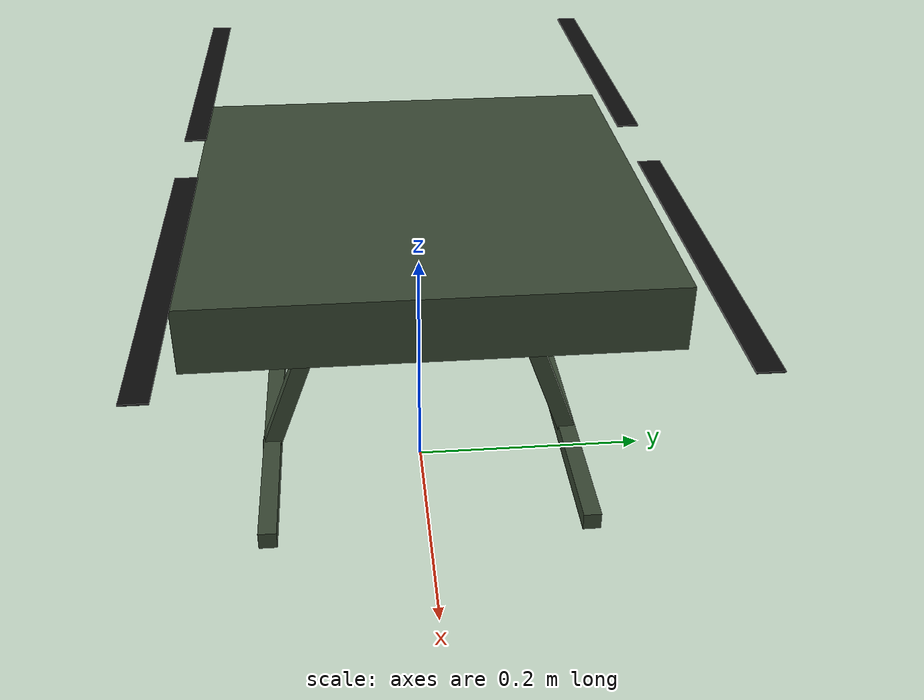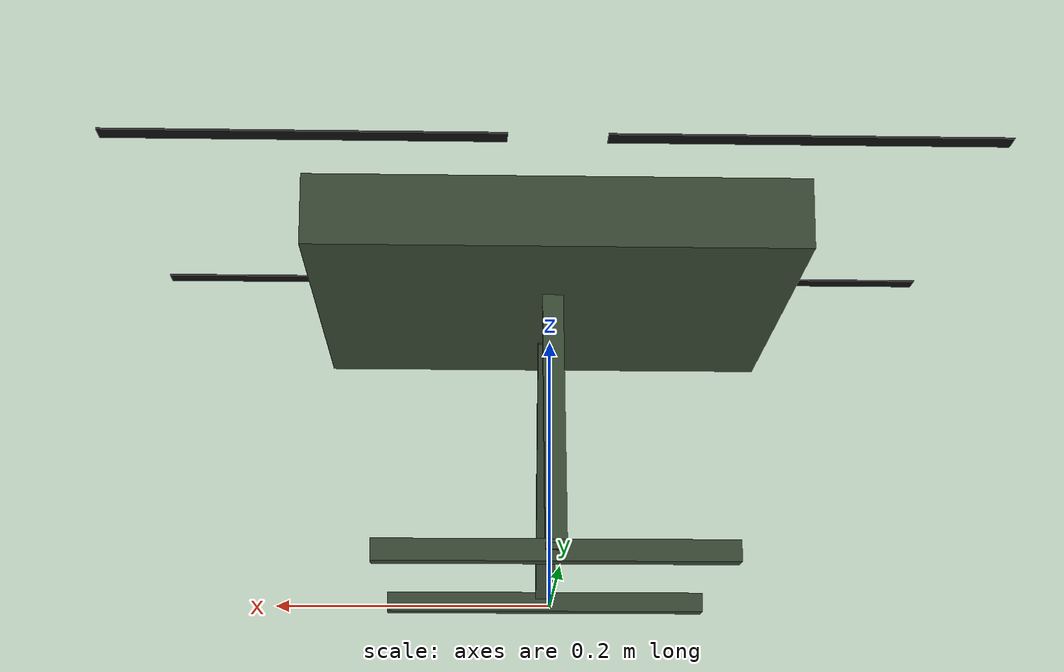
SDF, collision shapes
<?xml version="1.0" encoding="UTF-8"?>
<sdf version='1.9'>
  <model name='x500_base'>
    <pose>0 0 .24 0 0 0</pose>
    <self_collide>false</self_collide>
    <static>false</static>

    <link name="base_link">
      <inertial>
        <mass>2.0</mass>
        <inertia>
          <ixx>0.02166666666666667</ixx>
          <ixy>0</ixy>
          <ixz>0</ixz>
          <iyy>0.02166666666666667</iyy>
          <iyz>0</iyz>
          <izz>0.04000000000000001</izz>
        </inertia>
      </inertial>
      <gravity>true</gravity>
      <velocity_decay />

      <visual name="base_link_visual">
        <pose>0 0 .025 0 0 3.141592654</pose>
        <geometry>
          <mesh>
            <scale>1 1 1</scale>
            <uri>model://x500_base/meshes/NXP-HGD-CF.dae</uri>
          </mesh>
        </geometry>
        <material>
          <ambient>0.22 0.28 0.20 1</ambient>
          <diffuse>0.22 0.28 0.20 1</diffuse>
          <specular>0.05 0.05 0.05 1</specular>
          <pbr>
            <metal>
              <roughness>0.9</roughness>
              <metalness>0.1</metalness>
            </metal>
          </pbr>
        </material>
      </visual>

      <visual name="napoli_logo">
        <pose>0 0 0.06 0 0 0</pose>
        <cast_shadows>false</cast_shadows>
        <geometry>
          <plane>
            <normal>0 0 1</normal>
            <size>0.12 0.12</size>
          </plane>
        </geometry>
        <material>
          <ambient>1 1 1 1</ambient>
          <diffuse>1 1 1 1</diffuse>
          <specular>0.2 0.2 0.2 1</specular>
          <pbr>
            <metal>
              <albedo_map>model://x500_base/materials/textures/napoli.png</albedo_map>
              <roughness>0.5</roughness>
              <metalness>0.0</metalness>
            </metal>
          </pbr>
        </material>
      </visual>

      <visual name="5010_motor_base_0">
        <pose>0.174 0.174 .032 0 0 -.45</pose>
        <geometry><mesh><scale>1 1 1</scale><uri>model://x500_base/meshes/5010Base.dae</uri></mesh></geometry>
        <material><ambient>0.1 0.1 0.1 1</ambient><diffuse>0.1 0.1 0.1 1</diffuse></material>
      </visual>
      <visual name="5010_motor_base_1">
        <pose>-0.174 0.174 .032 0 0 -.45</pose>
        <geometry><mesh><scale>1 1 1</scale><uri>model://x500_base/meshes/5010Base.dae</uri></mesh></geometry>
        <material><ambient>0.1 0.1 0.1 1</ambient><diffuse>0.1 0.1 0.1 1</diffuse></material>
      </visual>
      <visual name="5010_motor_base_2">
        <pose>0.174 -0.174 .032 0 0 -.45</pose>
        <geometry><mesh><scale>1 1 1</scale><uri>model://x500_base/meshes/5010Base.dae</uri></mesh></geometry>
        <material><ambient>0.1 0.1 0.1 1</ambient><diffuse>0.1 0.1 0.1 1</diffuse></material>
      </visual>
      <visual name="5010_motor_base_3">
        <pose>-0.174 -0.174 .032 0 0 -.45</pose>
        <geometry><mesh><scale>1 1 1</scale><uri>model://x500_base/meshes/5010Base.dae</uri></mesh></geometry>
        <material><ambient>0.1 0.1 0.1 1</ambient><diffuse>0.1 0.1 0.1 1</diffuse></material>
      </visual>

      <visual name="NXP_FMUK66_FRONT">
        <pose>0.047 .001 .043 1 0 1.57</pose>
        <cast_shadows>false</cast_shadows>
        <geometry><plane><normal>0 0 1</normal><size>.013 .007</size></plane></geometry>
        <material><ambient>0.05 0.05 0.05 1</ambient><diffuse>0.05 0.05 0.05 1</diffuse></material>
      </visual>
      <visual name="NXP_FMUK66_TOP">
        <pose>-0.023 0 .0515 0 0 -1.57</pose>
        <cast_shadows>false</cast_shadows>
        <geometry><plane><normal>0 0 1</normal><size>.013 .007</size></plane></geometry>
        <material><ambient>0.05 0.05 0.05 1</ambient><diffuse>0.05 0.05 0.05 1</diffuse></material>
      </visual>
      <visual name="RDDRONE_FMUK66_TOP">
        <pose>-.03 0 .0515 0 0 -1.57</pose>
        <cast_shadows>false</cast_shadows>
        <geometry><plane><normal>0 0 1</normal><size>.032 .0034</size></plane></geometry>
        <material><ambient>0.05 0.05 0.05 1</ambient><diffuse>0.05 0.05 0.05 1</diffuse></material>
      </visual>

      <collision name="base_link_collision_0">
        <pose>0 0 .007 0 0 0</pose>
        <geometry><box><size>0.35 0.35 0.05</size></box></geometry>
      </collision>
      <collision name="base_link_collision_1">
        <pose>0 -0.098 -.123 -0.35 0 0</pose>
        <geometry><box><size>0.015 0.015 0.21</size></box></geometry>
      </collision>
      <collision name="base_link_collision_2">
        <pose>0 0.098 -.123 0.35 0 0</pose>
        <geometry><box><size>0.015 0.015 0.21</size></box></geometry>
      </collision>
      <collision name="base_link_collision_3">
        <pose>0 -0.132 -.2195 0 0 0</pose>
        <geometry><box><size>0.25 0.015 0.015</size></box></geometry>
      </collision>
      <collision name="base_link_collision_4">
        <pose>0 0.132 -.2195 0 0 0</pose>
        <geometry><box><size>0.25 0.015 0.015</size></box></geometry>
      </collision>

      <sensor name="air_pressure_sensor" type="air_pressure">
        <gz_frame_id>base_link</gz_frame_id>
        <always_on>1</always_on>
        <update_rate>50</update_rate>
        <air_pressure>
          <pressure>
            <noise type="gaussian"><mean>0</mean><stddev>3</stddev></noise>
          </pressure>
        </air_pressure>
      </sensor>
      <sensor name="magnetometer_sensor" type="magnetometer">
        <gz_frame_id>base_link</gz_frame_id>
        <always_on>1</always_on>
        <update_rate>100</update_rate>
        <magnetometer>
          <x><noise type="gaussian"><stddev>0.0001</stddev></noise></x>
          <y><noise type="gaussian"><stddev>0.0001</stddev></noise></y>
          <z><noise type="gaussian"><stddev>0.0001</stddev></noise></z>
        </magnetometer>
      </sensor>
      <sensor name="imu_sensor" type="imu">
        <gz_frame_id>base_link</gz_frame_id>
        <always_on>1</always_on>
        <update_rate>250</update_rate>
        <imu>
          <angular_velocity>
            <x><noise type="gaussian"><stddev>0.00087</stddev></noise></x>
            <y><noise type="gaussian"><stddev>0.00087</stddev></noise></y>
            <z><noise type="gaussian"><stddev>0.00087</stddev></noise></z>
          </angular_velocity>
          <linear_acceleration>
            <x><noise type="gaussian"><stddev>0.00637</stddev></noise></x>
            <y><noise type="gaussian"><stddev>0.00637</stddev></noise></y>
            <z><noise type="gaussian"><stddev>0.00686</stddev></noise></z>
          </linear_acceleration>
        </imu>
      </sensor>
      <sensor name="navsat_sensor" type="navsat">
        <gz_frame_id>base_link</gz_frame_id>
        <always_on>1</always_on>
        <update_rate>30</update_rate>
      </sensor>

      <sensor name="downward_camera" type="camera">
        <pose>0 0 -0.05 0 1.5708 0</pose>
        <camera>
          <horizontal_fov>1.047</horizontal_fov>
          <image>
            <width>640</width>
            <height>480</height>
          </image>
          <clip>
            <near>0.1</near>
            <far>100</far>
          </clip>
        </camera>
        <always_on>1</always_on>
        <update_rate>30</update_rate>
        <visualize>true</visualize>
        <topic>/drone/downward_cam/image_raw</topic>
      </sensor>

    </link>

    <link name="rotor_0">
      <gravity>true</gravity>
      <self_collide>false</self_collide>
      <velocity_decay />
      <pose>0.174 -0.174 0.06 0 0 0</pose>
      <inertial>
        <mass>0.016</mass>
        <inertia><ixx>3.8e-07</ixx><iyy>2.6e-05</iyy><izz>2.6e-05</izz></inertia>
      </inertial>
      <visual name="rotor_0_visual">
        <pose>-0.022 -0.146 -0.016 0 0 0</pose>
        <geometry><mesh><scale>0.85 0.85 0.85</scale><uri>model://x500_base/meshes/1345_prop_ccw.stl</uri></mesh></geometry>
        <material><ambient>0.05 0.05 0.05 1</ambient><diffuse>0.05 0.05 0.05 1</diffuse></material>
      </visual>
      <visual name="rotor_0_visual_motor_bell">
        <pose>0 0 -.032 0 0 0</pose>
        <geometry><mesh><scale>1 1 1</scale><uri>model://x500_base/meshes/5010Bell.dae</uri></mesh></geometry>
        <material><ambient>0.1 0.1 0.1 1</ambient><diffuse>0.1 0.1 0.1 1</diffuse></material>
      </visual>
      <collision name="rotor_0_collision">
        <pose>0 0 0 0 0 0 </pose>
        <geometry><box><size>0.279 0.017 0.001</size></box></geometry>
      </collision>
    </link>
    <joint name="rotor_0_joint" type="revolute">
      <parent>base_link</parent>
      <child>rotor_0</child>
      <axis><xyz>0 0 1</xyz><limit><lower>-1e+16</lower><upper>1e+16</upper></limit></axis>
    </joint>

    <link name="rotor_1">
      <gravity>true</gravity>
      <self_collide>false</self_collide>
      <pose>-0.174 0.174 0.06 0 0 0</pose>
      <inertial>
        <mass>0.016</mass>
        <inertia><ixx>3.8e-07</ixx><iyy>2.6e-05</iyy><izz>2.6e-05</izz></inertia>
      </inertial>
      <visual name="rotor_1_visual">
        <pose>-0.022 -0.146 -0.016 0 0 0</pose>
        <geometry><mesh><scale>0.85 0.85 0.85</scale><uri>model://x500_base/meshes/1345_prop_ccw.stl</uri></mesh></geometry>
        <material><ambient>0.05 0.05 0.05 1</ambient><diffuse>0.05 0.05 0.05 1</diffuse></material>
      </visual>
      <visual name="rotor_1_visual_motor_top">
        <pose>0 0 -.032 0 0 0</pose>
        <geometry><mesh><scale>1 1 1</scale><uri>model://x500_base/meshes/5010Bell.dae</uri></mesh></geometry>
        <material><ambient>0.1 0.1 0.1 1</ambient><diffuse>0.1 0.1 0.1 1</diffuse></material>
      </visual>
      <collision name="rotor_1_collision">
        <pose>0 0 0 0 0 0 </pose>
        <geometry><box><size>0.279 0.017 0.001</size></box></geometry>
      </collision>
    </link>
    <joint name="rotor_1_joint" type="revolute">
      <parent>base_link</parent>
      <child>rotor_1</child>
      <axis><xyz>0 0 1</xyz><limit><lower>-1e+16</lower><upper>1e+16</upper></limit></axis>
    </joint>

    <link name="rotor_2">
      <gravity>true</gravity>
      <self_collide>false</self_collide>
      <pose>0.174 0.174 0.06 0 0 0</pose>
      <inertial>
        <mass>0.016</mass>
        <inertia><ixx>3.8e-07</ixx><iyy>2.6e-05</iyy><izz>2.6e-05</izz></inertia>
      </inertial>
      <visual name="rotor_2_visual">
        <pose>-0.022 -0.146 -0.016 0 0 0</pose>
        <geometry><mesh><scale>0.85 0.85 0.85</scale><uri>model://x500_base/meshes/1345_prop_cw.stl</uri></mesh></geometry>
        <material><ambient>0.05 0.05 0.05 1</ambient><diffuse>0.05 0.05 0.05 1</diffuse></material>
      </visual>
      <visual name="rotor_2_visual_motor_top">
        <pose>0 0 -.032 0 0 0</pose>
        <geometry><mesh><scale>1 1 1</scale><uri>model://x500_base/meshes/5010Bell.dae</uri></mesh></geometry>
        <material><ambient>0.1 0.1 0.1 1</ambient><diffuse>0.1 0.1 0.1 1</diffuse></material>
      </visual>
      <collision name="rotor_2_collision">
        <pose>0 0 0 0 0 0 </pose>
        <geometry><box><size>0.279 0.017 0.001</size></box></geometry>
      </collision>
    </link>
    <joint name="rotor_2_joint" type="revolute">
      <parent>base_link</parent>
      <child>rotor_2</child>
      <axis><xyz>0 0 1</xyz><limit><lower>-1e+16</lower><upper>1e+16</upper></limit></axis>
    </joint>

    <link name="rotor_3">
      <gravity>true</gravity>
      <self_collide>false</self_collide>
      <pose>-0.174 -0.174 0.06 0 0 0</pose>
      <inertial>
        <mass>0.016</mass>
        <inertia><ixx>3.8e-07</ixx><iyy>2.6e-05</iyy><izz>2.6e-05</izz></inertia>
      </inertial>
      <visual name="rotor_3_visual">
        <pose>-0.022 -0.146 -0.016 0 0 0</pose>
        <geometry><mesh><scale>0.85 0.85 0.85</scale><uri>model://x500_base/meshes/1345_prop_cw.stl</uri></mesh></geometry>
        <material><ambient>0.05 0.05 0.05 1</ambient><diffuse>0.05 0.05 0.05 1</diffuse></material>
      </visual>
      <visual name="rotor_3_visual_motor_top">
        <pose>0 0 -.032 0 0 0</pose>
        <geometry><mesh><scale>1 1 1</scale><uri>model://x500_base/meshes/5010Bell.dae</uri></mesh></geometry>
        <material><ambient>0.1 0.1 0.1 1</ambient><diffuse>0.1 0.1 0.1 1</diffuse></material>
      </visual>
      <collision name="rotor_3_collision">
        <pose>0 0 0 0 0 0 </pose>
        <geometry><box><size>0.279 0.017 0.001</size></box></geometry>
      </collision>
    </link>
    <joint name="rotor_3_joint" type="revolute">
      <parent>base_link</parent>
      <child>rotor_3</child>
      <axis><xyz>0 0 1</xyz><limit><lower>-1e+16</lower><upper>1e+16</upper></limit></axis>
    </joint>

  </model>
</sdf>
